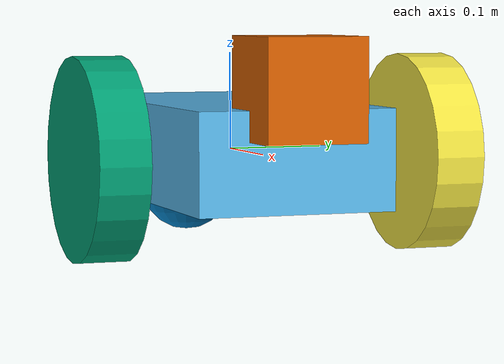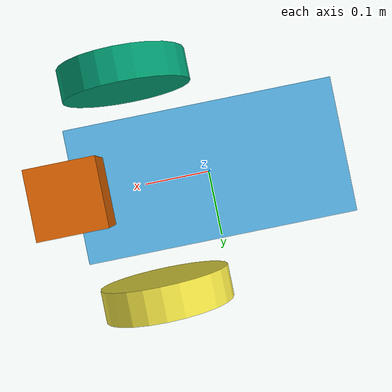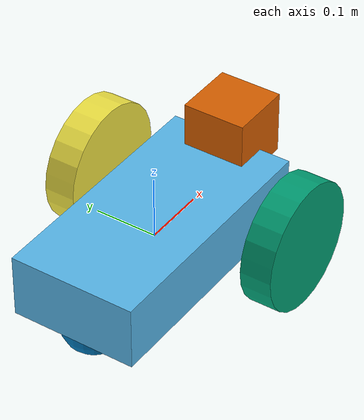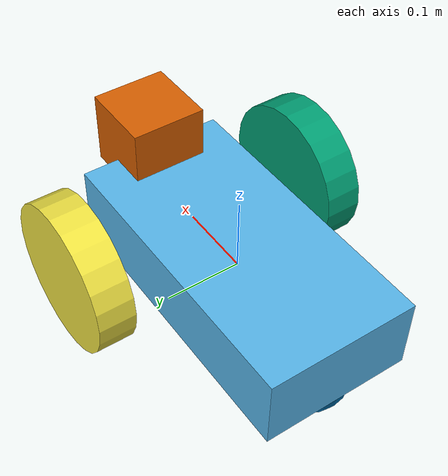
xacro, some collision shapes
<?xml version="1.0"?>
<robot name="sample_robot" xmlns:xacro="http://ros.org/wiki/xacro">
	<xacro:include filename="$(find sample_robot_description)/urdf/body/body.urdf.xacro"/>
	<xacro:include filename="$(find sample_robot_description)/urdf/wheel/wheel.urdf.xacro"/>
	<xacro:include filename="$(find sample_robot_description)/urdf/caster/caster.urdf.xacro"/>
	<xacro:include filename="$(find sample_robot_description)/urdf/sensor/hokuyo.urdf.xacro"/>
	<xacro:include filename="$(find sample_robot_description)/urdf/sensor/imu.gazebo.xacro"/>

	<link name="base_footprint"/>

	<xacro:base parent="base_footprint">
		<origin xyz="0 0 0"/>
	</xacro:base>

	<xacro:wheel prefix="right" parent="base_link">
		<origin xyz="0.1 -0.17 0.0" rpy="1.57 0 0" />
		<axis xyz="0 0 -1" />
	</xacro:wheel>

	<xacro:wheel prefix="left" parent="base_link">
		<origin xyz="0.1 0.17 0.0" rpy="-1.57 0 0" />
		<axis xyz="0 0 1" />
	</xacro:wheel>

	<xacro:caster parent="base_link">
		<origin xyz="-0.15 0 -0.05"/>
	</xacro:caster>

	<!-- velodyne -->

	<!-- Hokuyo -->
	<xacro:hokuyo parent="base_link">
		<origin xyz="0.2 0 0.07" rpy="0 0 0"/>
	</xacro:hokuyo>

	<!-- ===========  Transmission ============ -->
	<xacro:wheel_trans prefix="right" />
	<xacro:wheel_trans prefix="left" />

	<!-- =============== Gazebo =============== -->
	<gazebo>
		<plugin name="gazebo_ros_control" filename="libgazebo_ros_control.so">
			<robotNamespace>sample_robot</robotNamespace>
      <robotSimType>gazebo_ros_control/DefaultRobotHWSim</robotSimType>
		</plugin>
	</gazebo>

	<xacro:imu prefix="imu" parent="base_link" xyz="0 0 0" />

	<xacro:body_gazebo/>
	<xacro:wheel_gazebo prefix="right" />
	<xacro:wheel_gazebo prefix="left" />
	<xacro:caster_gazebo/>
</robot>

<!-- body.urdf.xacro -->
<robot xmlns:xacro="http://ros.org/wiki/xacro">
  <xacro:include filename="$(find sample_robot_description)/urdf/body/body.gazebo.xacro"/>
  <xacro:macro name="base" params="parent *joint_origin">
    <joint name="base_joint" type="fixed">
      <xacro:insert_block name="joint_origin"/>
      <parent link="${parent}"/>
      <child link="base_link"/>
    </joint>

    <link name="base_link">
      <visual>
        <geometry>
          <box size="0.400 0.200 0.100"/>
        </geometry>
      </visual>

      <collision>
        <geometry>
          <box size="0.400 0.200 0.100"/>
        </geometry>
      </collision>

      <inertial>
        <origin xyz="0 0 0"/>
        <mass value="0.6"/>
        <inertia ixx="1e-3" ixy="0" ixz="0" iyy="1e-3" iyz="0" izz="1e-3"/>
      </inertial>
    </link>
  </xacro:macro>
</robot>

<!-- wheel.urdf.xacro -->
<robot xmlns:xacro="http://ros.org/wiki/xacro">
  <xacro:include filename="$(find sample_robot_description)/urdf/wheel/wheel.gazebo.xacro" />
  <xacro:include filename="$(find sample_robot_description)/urdf/wheel/wheel.transmission.xacro" />
  <xacro:macro name="wheel" params="prefix parent *joint_origin *joint_axis">
    <joint name="${prefix}_wheel_joint" type="continuous">
      <xacro:insert_block name="joint_origin" />
      <xacro:insert_block name="joint_axis" />
      <parent link="${parent}" />
      <child link="${prefix}_wheel" />
    </joint>

    <link name="${prefix}_wheel">
      <visual>
        <geometry>
          <cylinder radius="0.1" length="0.05"/>
        </geometry>
      </visual>

      <collision>
        <geometry>
          <cylinder radius="0.1" length="0.05"/>
        </geometry>
      </collision>

      <inertial>
        <origin xyz="0.0 0.0 0.0" />
        <mass value="0.500"/>
        <inertia ixx="0.0013541667" ixy="0" ixz="0" iyy="0.0013541667" iyz="0" izz="0.0025"/>
      </inertial>
    </link>
  </xacro:macro>
</robot>

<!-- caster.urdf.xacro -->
<robot xmlns:xacro="http://ros.org/wiki/xacro">
  <xacro:include filename="$(find sample_robot_description)/urdf/caster/caster.gazebo.xacro"/>
  <xacro:macro name="caster" params="parent *joint_origin">
    <joint name="$caster_joint" type="fixed">
      <xacro:insert_block name="joint_origin" />
      <parent link="${parent}" />
      <child link="caster_link" />
    </joint>

    <link name="caster_link">
      <visual>
        <geometry>
          <sphere radius="0.05"/>
        </geometry>
      </visual>

      <collision>
        <geometry>
          <sphere radius="0.05"/>
        </geometry>
      </collision>

      <inertial>
        <origin xyz="0.0 0 0.0" />
        <mass value="0.50" />
        <inertia ixx="0.0025" ixy="0.0" iyy="0.0025" ixz="0.0" iyz="0.0" izz="0.0025" />
      </inertial>
    </link>
  </xacro:macro>
</robot>

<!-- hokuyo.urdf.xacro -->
<robot xmlns:xacro="http://ros.org/wiki/xacro">
    <xacro:include filename="$(find sample_robot_description)/urdf/sensor/hokuyo.gazebo.xacro"/>
    <xacro:macro name="hokuyo" params="parent *joint_origin">
        <joint name="hokuyo_joint" type="fixed">
            <xacro:insert_block name="joint_origin" />
            <parent link="${parent}"/>
            <child link="hokuyo_link"/>
        </joint>

        <link name="hokuyo_link">
            <collision>
                <origin xyz="0 0 0" rpy="0 0 0"/>
                <geometry>
                    <box size="0.1 0.1 0.1"/>
                </geometry>
            </collision>

            <visual>
                <origin xyz="0 0 0" rpy="0 0 0"/>
                <geometry>
                    <mesh filename="package://sample_robot_description/meshes/hokuyo.dae"/>
                </geometry>
            </visual>

            <inertial>
                <mass value="1e-5" />
                <origin xyz="0 0 0" rpy="0 0 0"/>
                <inertia ixx="1e-6" ixy="0" ixz="0" iyy="1e-6" iyz="0" izz="1e-6" />
            </inertial>
        </link>
    </xacro:macro>
</robot>

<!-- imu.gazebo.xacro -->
<robot name="sample_robot" xmlns:xacro="http://ros.org/wiki/xacro">
  <xacro:macro name="imu" params="parent prefix xyz">
    <joint name="imu_joint" type="fixed">
      <parent link="${parent}"/>
      <child  link="${prefix}_link"/>
      <origin xyz="${xyz}" rpy="0 0 0"/>
    </joint>
    <link name="${prefix}_link"/>
    <gazebo reference="${prefix}_link">
      <gravity>true</gravity>
      <sensor name="imu_sensor" type="imu">
        <always_on>true</always_on>
        <update_rate>100</update_rate>
        <visualize>true</visualize>
        <topic>data</topic>
        <plugin filename="libgazebo_ros_imu_sensor.so" name="imu_plugin">
          <topicName>${prefix}/data</topicName>
          <bodyName>${prefix}_link</bodyName>
          <updateRateHZ>10.0</updateRateHZ>
          <gaussianNoise>0.0</gaussianNoise>
          <xyzOffset>0 0 0</xyzOffset>
          <rpyOffset>0 0 0</rpyOffset>
          <frameName>${prefix}_link</frameName>
        </plugin>
        <pose>0 0 0 0 0 0</pose>
      </sensor>
    </gazebo>
  </xacro:macro>
</robot>
